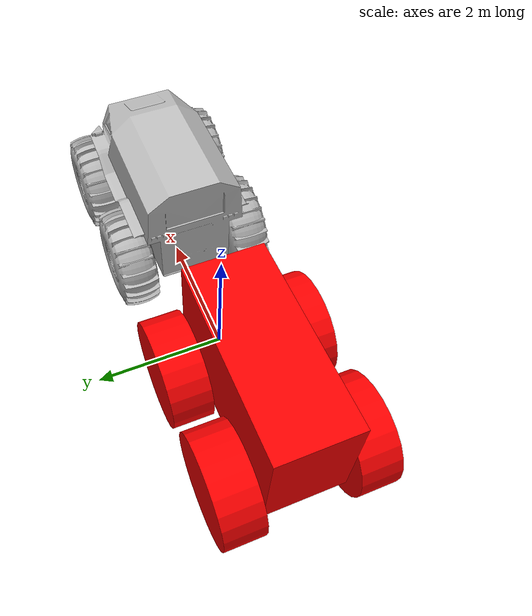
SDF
<?xml version="1.0" ?>
<sdf version="1.10">
  <world name="default">

    <!-- Collision Model (represents robot_car collisions) -->
    <model name="robot_car_collision">
      <pose>-2 0 0 0 0 0</pose> <!-- Positioned to the left -->

      <!-- Chassis -->
      <link name="chassis">
        <pose relative_to="__model__">0.5 0 1.4 0 0 0</pose>
        <!-- Inertial properties (used for physics) -->
        <inertial>
          <mass>2.0</mass>
          <inertia>
            <ixx>0.0794</ixx>
            <ixy>0.0</ixy>
            <ixz>0.0</ixz>
            <iyy>0.0768</iyy>
            <iyz>0.0</iyz>
            <izz>0.0678</izz>
          </inertia>
        </inertial>
        <!-- Collision geometry -->
        <collision name="chassis_collision">
          <geometry>
            <box>
              <size>2.9 1.2 1.7</size>
            </box>
          </geometry>
        </collision>
        <!-- Visual element that mirrors the collision geometry (opaque red) -->
        <visual name="chassis_collision_visual">
          <geometry>
            <box>
              <size>2.9 1.2 1.7</size>
            </box>
          </geometry>
          <material>
            <ambient>1 0 0 1</ambient>
            <diffuse>1 0 0 1</diffuse>
            <specular>1 0 0 1</specular>
          </material>
        </visual>
      </link>

      <!-- Left Wheel -->
      <link name="left_wheel">
        <pose relative_to="chassis">-0.9 0.95 -0.7 -1.5707 0 0</pose>
        <collision name="left_wheel_collision">
          <geometry>
            <cylinder>
              <radius>0.8</radius>
              <length>0.6</length>
            </cylinder>
          </geometry>
        </collision>
        <visual name="left_wheel_collision_visual">
          <geometry>
            <cylinder>
              <radius>0.8</radius>
              <length>0.6</length>
            </cylinder>
          </geometry>
          <material>
            <ambient>1 0 0 1</ambient>
            <diffuse>1 0 0 1</diffuse>
            <specular>1 0 0 1</specular>
          </material>
        </visual>
      </link>

      <!-- Right Wheel -->
      <link name="right_wheel">
        <pose relative_to="chassis">-0.9 -0.95 -0.7 1.5707 0 0</pose>
        <collision name="right_wheel_collision">
          <geometry>
            <cylinder>
              <radius>0.8</radius>
              <length>0.6</length>
            </cylinder>
          </geometry>
        </collision>
        <visual name="right_wheel_collision_visual">
          <geometry>
            <cylinder>
              <radius>0.8</radius>
              <length>0.6</length>
            </cylinder>
          </geometry>
          <material>
            <ambient>1 0 0 1</ambient>
            <diffuse>1 0 0 1</diffuse>
            <specular>1 0 0 1</specular>
          </material>
        </visual>
      </link>

      <!-- Left Front Wheel -->
      <link name="left_front_wheel">
        <pose relative_to="chassis">0.9 0.95 -0.7 -1.5707 0 0</pose>
        <collision name="left_front_wheel_collision">
          <geometry>
            <cylinder>
              <radius>0.8</radius>
              <length>0.6</length>
            </cylinder>
          </geometry>
        </collision>
        <visual name="left_front_wheel_collision_visual">
          <geometry>
            <cylinder>
              <radius>0.8</radius>
              <length>0.6</length>
            </cylinder>
          </geometry>
          <material>
            <ambient>1 0 0 1</ambient>
            <diffuse>1 0 0 1</diffuse>
            <specular>1 0 0 1</specular>
          </material>
        </visual>
      </link>

      <!-- Right Front Wheel -->
      <link name="right_front_wheel">
        <pose relative_to="chassis">0.9 -0.95 -0.7 1.5707 0 0</pose>
        <collision name="right_front_wheel_collision">
          <geometry>
            <cylinder>
              <radius>0.8</radius>
              <length>0.6</length>
            </cylinder>
          </geometry>
        </collision>
        <visual name="right_front_wheel_collision_visual">
          <geometry>
            <cylinder>
              <radius>0.8</radius>
              <length>0.6</length>
            </cylinder>
          </geometry>
          <material>
            <ambient>1 0 0 1</ambient>
            <diffuse>1 0 0 1</diffuse>
            <specular>1 0 0 1</specular>
          </material>
        </visual>
      </link>

      <!-- Joints -->
      <joint name="left_wheel_joint" type="revolute">
        <parent>chassis</parent>
        <child>left_wheel</child>
        <axis>
          <xyz>0 0 1</xyz>
        </axis>
      </joint>

      <joint name="right_wheel_joint" type="revolute">
        <parent>chassis</parent>
        <child>right_wheel</child>
        <axis>
          <xyz>0 0 1</xyz>
        </axis>
      </joint>

      <joint name="left_front_wheel_joint" type="revolute">
        <parent>chassis</parent>
        <child>left_front_wheel</child>
        <axis>
          <xyz>0 0 1</xyz>
        </axis>
      </joint>

      <joint name="right_front_wheel_joint" type="revolute">
        <parent>chassis</parent>
        <child>right_front_wheel</child>
        <axis>
          <xyz>0 0 1</xyz>
        </axis>
      </joint>

    </model>

    <!-- Visual Model (represents robot_car visual using mesh files) -->
    <model name="robot_car_visual">
      <pose>2 0 0 0 0 0</pose> <!-- Positioned to the right -->

      <!-- Chassis Visual -->
      <link name="sherpa_chassis">
        <pose relative_to="__model__">0.5 0 0.9 0 0 0</pose>
        <visual name="sherpa_visual">
          <pose>0 0 0 1.5707 0 1.5707</pose>
          <geometry>
            <mesh>
              <uri>meshes/shassis.obj</uri>
              <scale>2.5 2.5 2.5</scale>
            </mesh>
          </geometry>
        </visual>
      </link>

      <!-- Left Wheel Visual -->
      <link name="left_wheel">
        <pose relative_to="sherpa_chassis">-0.9 0.6 -0.2 -1.5707 0 0</pose>
        <visual name="left_wheel_visual">
          <pose>0 0 0 1.5707 0 0</pose>
          <geometry>
            <mesh>
              <uri>meshes/wheel.obj</uri>
              <scale>1.0 1.0 1.0</scale>
            </mesh>
          </geometry>
        </visual>
      </link>

      <!-- Right Wheel Visual -->
      <link name="right_wheel">
        <pose relative_to="sherpa_chassis">-0.9 -0.6 -0.2 1.5707 0 0</pose>
        <visual name="right_wheel_visual">
          <pose>0 0 0 1.5707 0 0</pose>
          <geometry>
            <mesh>
              <uri>meshes/wheel.obj</uri>
              <scale>1.0 1.0 1.0</scale>
            </mesh>
          </geometry>
        </visual>
      </link>

      <!-- Left Front Wheel Visual -->
      <link name="left_front_wheel">
        <pose relative_to="sherpa_chassis">0.9 0.6 -0.2 -1.5707 0 0</pose>
        <visual name="left_front_wheel_visual">
          <pose>0 0 0 1.5707 0 0</pose>
          <geometry>
            <mesh>
              <uri>meshes/wheel.obj</uri>
              <scale>1.0 1.0 1.0</scale>
            </mesh>
          </geometry>
        </visual>
      </link>

      <!-- Right Front Wheel Visual -->
      <link name="right_front_wheel">
        <pose relative_to="sherpa_chassis">0.9 -0.6 -0.2 1.5707 0 0</pose>
        <visual name="right_front_wheel_visual">
          <pose>0 0 0 1.5707 0 0</pose>
          <geometry>
            <mesh>
              <uri>meshes/wheel.obj</uri>
              <scale>1.0 1.0 1.0</scale>
            </mesh>
          </geometry>
        </visual>
      </link>

    </model>

  </world>
</sdf>
